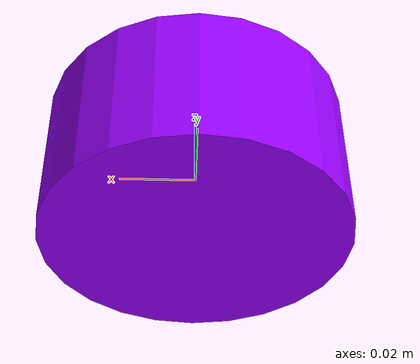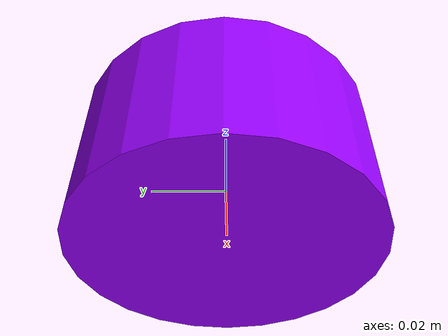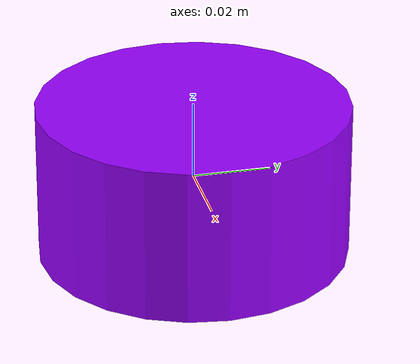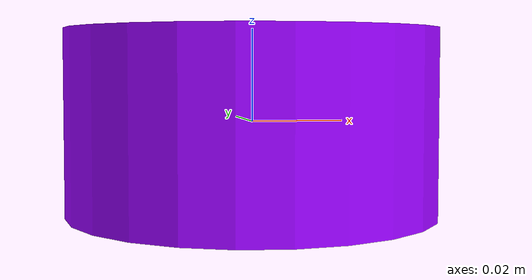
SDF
<?xml version='1.0'?>
<sdf version='1.6'>
  <model name='cylinder'>
    <link name='link'>
      <pose frame=''>0 0 0 0 -0 0</pose>
      <inertial>
        <mass>1.0</mass>
        <inertia>
          <ixx>0.0001</ixx>
          <ixy>0</ixy>
          <ixz>0</ixz>
          <iyy>0.0001</iyy>
          <iyz>0</iyz>
          <izz>0.0001</izz>
        </inertia>
        <pose frame=''>0 0 0 0 -0 0</pose>
      </inertial>

      <self_collide>0</self_collide>
      <kinematic>0</kinematic>
      <gravity>1</gravity>

      <visual name='visual'>
        <geometry>
          <cylinder>
            <radius>0.04</radius>
            <length>0.04</length>
          </cylinder>
        </geometry>
        <pose frame=''>0 0 0 0 -0 0</pose>
        <transparency>0</transparency>
        <cast_shadows>1</cast_shadows>
        <material>
          <shader type='pixel'>
            <normal_map>__default__</normal_map>
          </shader>
          <ambient>1 0 0 0</ambient>
          <diffuse>0.6 0 1 0</diffuse>
          <specular>0.6 0 0 0</specular>
          <emissive>0 0 0 1</emissive>
          <script>
            <name>ModelPreview_1::link::visual_MATERIAL_</name>
            <uri>__default__</uri>
          </script>
        </material>
      </visual>

      <collision name='collision'>
        <laser_retro>0</laser_retro>
        <max_contacts>10</max_contacts>
        <pose frame=''>0 0 0 0 -0 0</pose>
        <geometry>
          <cylinder>
            <radius>0.04</radius>
            <length>0.04</length>
          </cylinder>
        </geometry>
        <surface>
          <friction>
            <ode>
              <mu>1000</mu>
              <mu2>1000</mu2>
              <fdir1>0 0 0</fdir1>
              <slip1>0</slip1>
              <slip2>0</slip2>
            </ode>
            <torsional>
              <coefficient>1</coefficient>
              <patch_radius>0</patch_radius>
              <surface_radius>0</surface_radius>
              <use_patch_radius>1</use_patch_radius>
              <ode>
                <slip>0</slip>
              </ode>
            </torsional>
          </friction>
          <bounce>
            <restitution_coefficient>0</restitution_coefficient>
            <threshold>1e+06</threshold>
          </bounce>
          <contact>
            <collide_without_contact>0</collide_without_contact>
            <collide_without_contact_bitmask>1</collide_without_contact_bitmask>
            <collide_bitmask>1</collide_bitmask>
            <ode>
              <soft_cfm>0</soft_cfm>
              <soft_erp>0.2</soft_erp>
              <kp>1e+13</kp>
              <kd>1</kd>
              <max_vel>0.01</max_vel>
              <min_depth>0</min_depth>
            </ode>
            <bullet>
              <split_impulse>1</split_impulse>
              <split_impulse_penetration_threshold>-0.01</split_impulse_penetration_threshold>
              <soft_cfm>0</soft_cfm>
              <soft_erp>0.2</soft_erp>
              <kp>1e+13</kp>
              <kd>1</kd>
            </bullet>
          </contact>
        </surface>
      </collision>

    </link>
    <static>0</static>
    <allow_auto_disable>1</allow_auto_disable>
  </model>
</sdf>
